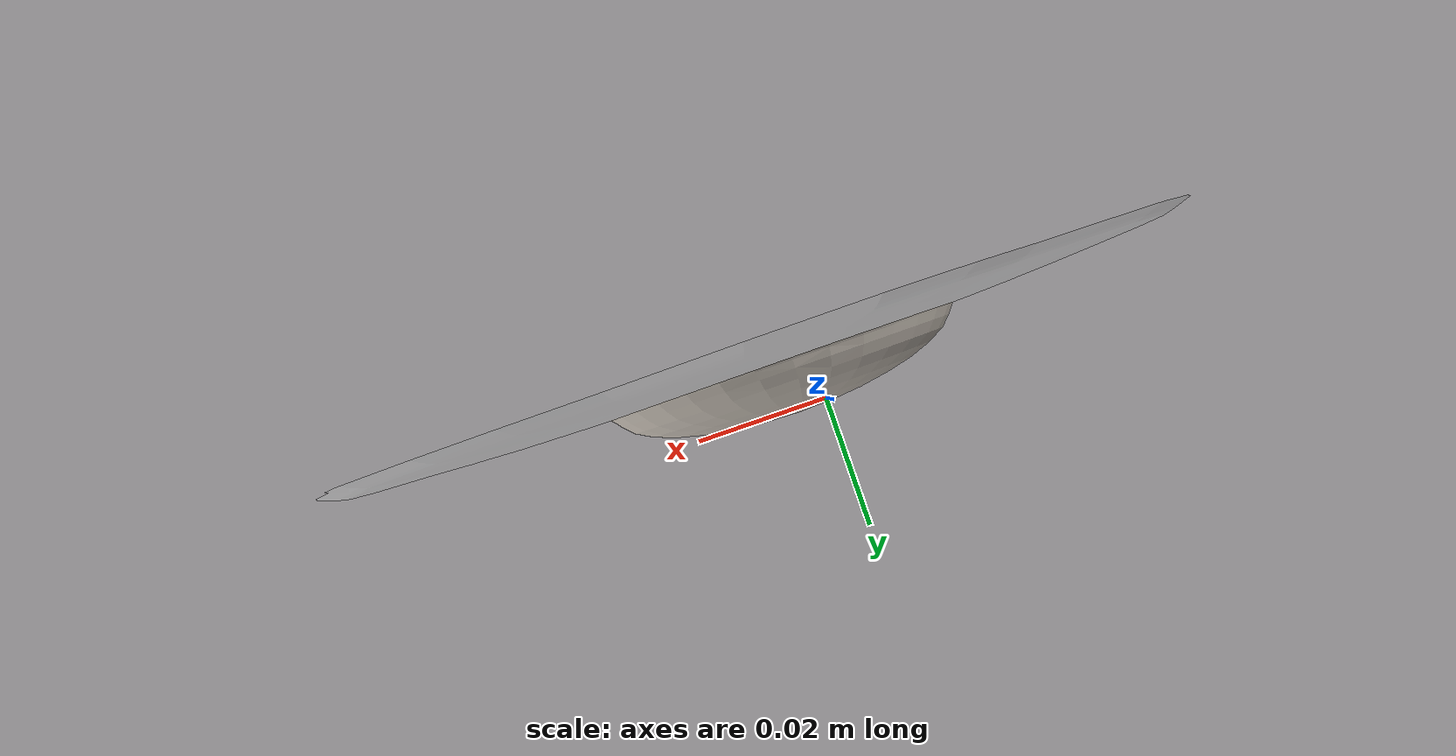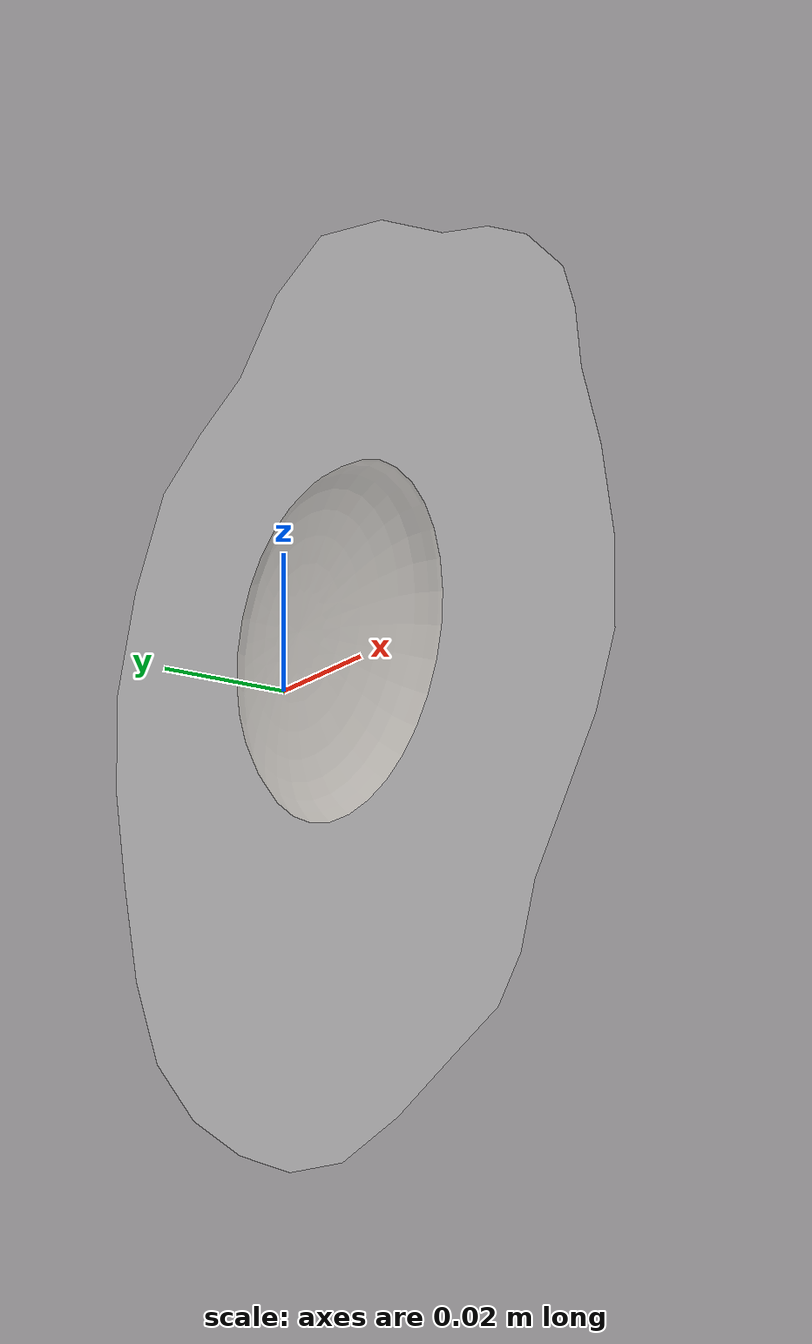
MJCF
<mujoco model="Egg_Cracked_7">
  <compiler autolimits="true" boundmass="0.01" angle="radian"/>
  <default>
    <default class="/">
      <default class="__VISUAL_MJT__">
        <geom contype="0" conaffinity="0" group="0"/>
      </default>
      <default class="__STRUCTURAL_MJT__">
        <geom contype="8" conaffinity="15" group="4" friction="0.90000000000000002 0.90000000000000002 0.001" solref="0.025000000000000001 1" solimp="0.998 0.998 0.001"/>
      </default>
      <default class="__DYNAMIC_MJT__">
        <geom contype="1" conaffinity="15" group="4" friction="0.90000000000000002 0.90000000000000002 0.001" solref="0.025000000000000001 1" solimp="0.998 0.998 0.001"/>
      </default>
    </default>
  </default>
  <asset>
    <texture name="Fried_Egg_White_Uncooked_Mat" type="2d" file="Fried_Egg_AlbedoTransparency.png"/>
    <material name="material_Fried_Egg_White_Uncooked_Mat" class="/" texture="Fried_Egg_White_Uncooked_Mat" specular="0.5" shininess="0.5" rgba="1 1 1 0.5"/>
    <texture name="Fried_Egg_Yolk_Mat" type="2d" file="Fried_Egg_AlbedoTransparency.png"/>
    <material name="material_Fried_Egg_Yolk_Mat" class="/" texture="Fried_Egg_Yolk_Mat" specular="0.5" shininess="0.5" rgba="1 1 1 1"/>
    <mesh name="Egg_Cracked_7_fried_egg_7_0" class="/" file="Egg_Cracked_7_fried_egg_7/Egg_Cracked_7_fried_egg_7_0.obj" scale="1 1 1"/>
    <mesh name="Egg_Cracked_7_fried_egg_7_1" class="/" file="Egg_Cracked_7_fried_egg_7/Egg_Cracked_7_fried_egg_7_1.obj" scale="1 1 1"/>
  </asset>
  <worldbody>
    <body name="Egg_Cracked_7">
      <joint name="Egg_Cracked_7_free" class="/" type="free" pos="0 0 0" axis="0 0 1" stiffness="0" range="0 0" armature="0" damping="0.10000000000000001" frictionloss="0"/>
      <body name="Egg_Cracked_7_fried_egg_7" pos="0.00464 -0.01023 0.0073499999999999998" quat="1 0 0 0">
        <geom name="Egg_Cracked_7_fried_egg_7_0" class="__VISUAL_MJT__" type="mesh" material="material_Fried_Egg_White_Uncooked_Mat" shellinertia="false" mesh="Egg_Cracked_7_fried_egg_7_0"/>
        <geom name="Egg_Cracked_7_fried_egg_7_1" class="__VISUAL_MJT__" type="mesh" material="material_Fried_Egg_Yolk_Mat" shellinertia="false" mesh="Egg_Cracked_7_fried_egg_7_1"/>
        <geom name="Egg_Cracked_7_PrimitiveCollider_0" class="__DYNAMIC_MJT__" type="box" size="0.066303759813308716 0.010231256484985352 0.069351255893707275" rgba="0 1 0 1" pos="0.0046370327472686768 0.010231256484985352 -0.0073456168174743652" quat="1 0 0 0"/>
      </body>
    </body>
  </worldbody>
</mujoco>
